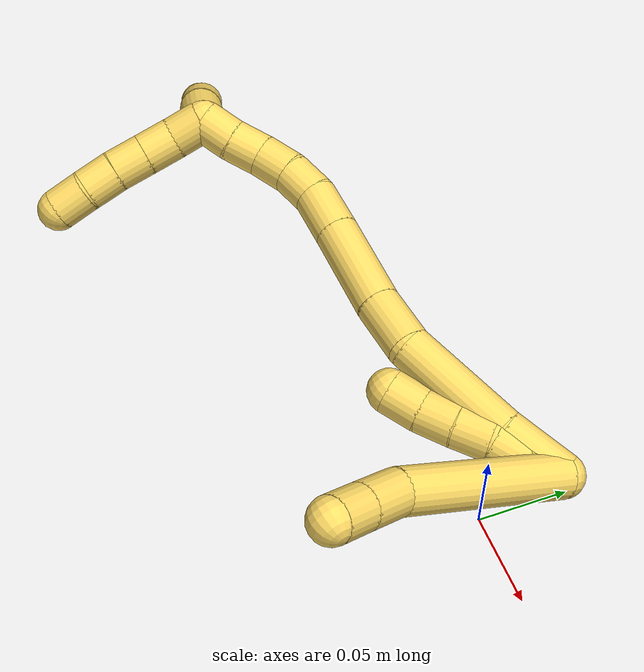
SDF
<sdf version="1.7">
 <world name="default">
  <model name="5">
   <static>0</static>
   <link name="5">
    <collision name="collision-cylinder-e_1_2_8">
     <pose>0.024452 -0.043706 0.009851 1.34911 0.499592 0.40252</pose>
     <geometry><cylinder><radius>0.0125</radius><length>0.102081</length></cylinder></geometry>
     <surface>
      <friction><ode><mu>1.16</mu><mu2>1.16</mu2><slip1>0</slip1><slip2>0</slip2></ode></friction>
      <contact><ode><kp>1e+06</kp><kd>1</kd><max_vel>0</max_vel><min_depth>0.001</min_depth></ode></contact>
     </surface>
    </collision>
    <visual name="visual-cylinder-e_1_2_8">
     <pose>0.024452 -0.043706 0.009851 1.34911 0.499592 0.40252</pose>
     <geometry><cylinder><radius>0.0125</radius><length>0.102081</length></cylinder></geometry>
     <material><ambient>1 0.858824 0.4 1</ambient></material>
    </visual>
    <collision name="collision-cylinder-e_2_8_9">
     <pose>0.056393 -0.098356 0.018195 1.70767 0.595743 0.67725</pose>
     <geometry><cylinder><radius>0.0125</radius><length>0.026693</length></cylinder></geometry>
     <surface>
      <friction><ode><mu>1.16</mu><mu2>1.16</mu2><slip1>0</slip1><slip2>0</slip2></ode></friction>
      <contact><ode><kp>1e+06</kp><kd>1</kd><max_vel>0</max_vel><min_depth>0.001</min_depth></ode></contact>
     </surface>
    </collision>
    <visual name="visual-cylinder-e_2_8_9">
     <pose>0.056393 -0.098356 0.018195 1.70767 0.595743 0.67725</pose>
     <geometry><cylinder><radius>0.0125</radius><length>0.026693</length></cylinder></geometry>
     <material><ambient>1 0.858824 0.4 1</ambient></material>
    </visual>
    <collision name="collision-cylinder-e_3_9_6">
     <pose>0.070011 -0.117854 0.015313 1.73009 0.615744 0.71429</pose>
     <geometry><cylinder><radius>0.0125</radius><length>0.021226</length></cylinder></geometry>
     <surface>
      <friction><ode><mu>1.16</mu><mu2>1.16</mu2><slip1>0</slip1><slip2>0</slip2></ode></friction>
      <contact><ode><kp>1e+06</kp><kd>1</kd><max_vel>0</max_vel><min_depth>0.001</min_depth></ode></contact>
     </surface>
    </collision>
    <visual name="visual-cylinder-e_3_9_6">
     <pose>0.070011 -0.117854 0.015313 1.73009 0.615744 0.71429</pose>
     <geometry><cylinder><radius>0.0125</radius><length>0.021226</length></cylinder></geometry>
     <material><ambient>1 0.858824 0.4 1</ambient></material>
    </visual>
    <collision name="collision-cylinder-e_1_2_10">
     <pose>0.001877 -0.005589 0.008077 0.605297 0.188827 0.059118</pose>
     <geometry><cylinder><radius>0.0125</radius><length>0.02</length></cylinder></geometry>
     <surface>
      <friction><ode><mu>1.16</mu><mu2>1.16</mu2><slip1>0</slip1><slip2>0</slip2></ode></friction>
      <contact><ode><kp>1e+06</kp><kd>1</kd><max_vel>0</max_vel><min_depth>0.001</min_depth></ode></contact>
     </surface>
    </collision>
    <visual name="visual-cylinder-e_1_2_10">
     <pose>0.001877 -0.005589 0.008077 0.605297 0.188827 0.059118</pose>
     <geometry><cylinder><radius>0.0125</radius><length>0.02</length></cylinder></geometry>
     <material><ambient>1 0.858824 0.4 1</ambient></material>
    </visual>
    <collision name="collision-cylinder-e_2_10_11">
     <pose>0.006223 -0.016216 0.024432 0.546683 0.249458 0.070274</pose>
     <geometry><cylinder><radius>0.0125</radius><length>0.02</length></cylinder></geometry>
     <surface>
      <friction><ode><mu>1.16</mu><mu2>1.16</mu2><slip1>0</slip1><slip2>0</slip2></ode></friction>
      <contact><ode><kp>1e+06</kp><kd>1</kd><max_vel>0</max_vel><min_depth>0.001</min_depth></ode></contact>
     </surface>
    </collision>
    <visual name="visual-cylinder-e_2_10_11">
     <pose>0.006223 -0.016216 0.024432 0.546683 0.249458 0.070274</pose>
     <geometry><cylinder><radius>0.0125</radius><length>0.02</length></cylinder></geometry>
     <material><ambient>1 0.858824 0.4 1</ambient></material>
    </visual>
    <collision name="collision-cylinder-e_3_11_12">
     <pose>0.009193 -0.027009 0.040873 0.614196 0.050167 0.015912</pose>
     <geometry><cylinder><radius>0.0125</radius><length>0.02</length></cylinder></geometry>
     <surface>
      <friction><ode><mu>1.16</mu><mu2>1.16</mu2><slip1>0</slip1><slip2>0</slip2></ode></friction>
      <contact><ode><kp>1e+06</kp><kd>1</kd><max_vel>0</max_vel><min_depth>0.001</min_depth></ode></contact>
     </surface>
    </collision>
    <visual name="visual-cylinder-e_3_11_12">
     <pose>0.009193 -0.027009 0.040873 0.614196 0.050167 0.015912</pose>
     <geometry><cylinder><radius>0.0125</radius><length>0.02</length></cylinder></geometry>
     <material><ambient>1 0.858824 0.4 1</ambient></material>
    </visual>
    <collision name="collision-cylinder-e_4_12_13">
     <pose>0.009788 -0.037994 0.057558 0.55036 0.009291 0.002623</pose>
     <geometry><cylinder><radius>0.0125</radius><length>0.02</length></cylinder></geometry>
     <surface>
      <friction><ode><mu>1.16</mu><mu2>1.16</mu2><slip1>0</slip1><slip2>0</slip2></ode></friction>
      <contact><ode><kp>1e+06</kp><kd>1</kd><max_vel>0</max_vel><min_depth>0.001</min_depth></ode></contact>
     </surface>
    </collision>
    <visual name="visual-cylinder-e_4_12_13">
     <pose>0.009788 -0.037994 0.057558 0.55036 0.009291 0.002623</pose>
     <geometry><cylinder><radius>0.0125</radius><length>0.02</length></cylinder></geometry>
     <material><ambient>1 0.858824 0.4 1</ambient></material>
    </visual>
    <collision name="collision-cylinder-e_5_13_5">
     <pose>0.011273 -0.047728 0.0749 0.472171 0.139745 0.03367</pose>
     <geometry><cylinder><radius>0.0125</radius><length>0.02</length></cylinder></geometry>
     <surface>
      <friction><ode><mu>1.16</mu><mu2>1.16</mu2><slip1>0</slip1><slip2>0</slip2></ode></friction>
      <contact><ode><kp>1e+06</kp><kd>1</kd><max_vel>0</max_vel><min_depth>0.001</min_depth></ode></contact>
     </surface>
    </collision>
    <visual name="visual-cylinder-e_5_13_5">
     <pose>0.011273 -0.047728 0.0749 0.472171 0.139745 0.03367</pose>
     <geometry><cylinder><radius>0.0125</radius><length>0.02</length></cylinder></geometry>
     <material><ambient>1 0.858824 0.4 1</ambient></material>
    </visual>
    <collision name="collision-cylinder-e_1_2_14">
     <pose>0.004208 -0.006817 0.016961 0.382149 0.226243 0.043944</pose>
     <geometry><cylinder><radius>0.0125</radius><length>0.037515</length></cylinder></geometry>
     <surface>
      <friction><ode><mu>1.16</mu><mu2>1.16</mu2><slip1>0</slip1><slip2>0</slip2></ode></friction>
      <contact><ode><kp>1e+06</kp><kd>1</kd><max_vel>0</max_vel><min_depth>0.001</min_depth></ode></contact>
     </surface>
    </collision>
    <visual name="visual-cylinder-e_1_2_14">
     <pose>0.004208 -0.006817 0.016961 0.382149 0.226243 0.043944</pose>
     <geometry><cylinder><radius>0.0125</radius><length>0.037515</length></cylinder></geometry>
     <material><ambient>1 0.858824 0.4 1</ambient></material>
    </visual>
    <collision name="collision-cylinder-e_2_14_15">
     <pose>0.012814 -0.022095 0.066315 0.255494 0.130643 0.016804</pose>
     <geometry><cylinder><radius>0.0125</radius><length>0.067536</length></cylinder></geometry>
     <surface>
      <friction><ode><mu>1.16</mu><mu2>1.16</mu2><slip1>0</slip1><slip2>0</slip2></ode></friction>
      <contact><ode><kp>1e+06</kp><kd>1</kd><max_vel>0</max_vel><min_depth>0.001</min_depth></ode></contact>
     </surface>
    </collision>
    <visual name="visual-cylinder-e_2_14_15">
     <pose>0.012814 -0.022095 0.066315 0.255494 0.130643 0.016804</pose>
     <geometry><cylinder><radius>0.0125</radius><length>0.067536</length></cylinder></geometry>
     <material><ambient>1 0.858824 0.4 1</ambient></material>
    </visual>
    <collision name="collision-cylinder-e_3_15_16">
     <pose>0.01652 -0.030278 0.114595 -0.017493 -0.043602 0.000381</pose>
     <geometry><cylinder><radius>0.0125</radius><length>0.031807</length></cylinder></geometry>
     <surface>
      <friction><ode><mu>1.16</mu><mu2>1.16</mu2><slip1>0</slip1><slip2>0</slip2></ode></friction>
      <contact><ode><kp>1e+06</kp><kd>1</kd><max_vel>0</max_vel><min_depth>0.001</min_depth></ode></contact>
     </surface>
    </collision>
    <visual name="visual-cylinder-e_3_15_16">
     <pose>0.01652 -0.030278 0.114595 -0.017493 -0.043602 0.000381</pose>
     <geometry><cylinder><radius>0.0125</radius><length>0.031807</length></cylinder></geometry>
     <material><ambient>1 0.858824 0.4 1</ambient></material>
    </visual>
    <collision name="collision-cylinder-e_4_16_17">
     <pose>0.015842 -0.027325 0.156669 -0.101806 0.000585 -3e-05</pose>
     <geometry><cylinder><radius>0.0125</radius><length>0.052648</length></cylinder></geometry>
     <surface>
      <friction><ode><mu>1.16</mu><mu2>1.16</mu2><slip1>0</slip1><slip2>0</slip2></ode></friction>
      <contact><ode><kp>1e+06</kp><kd>1</kd><max_vel>0</max_vel><min_depth>0.001</min_depth></ode></contact>
     </surface>
    </collision>
    <visual name="visual-cylinder-e_4_16_17">
     <pose>0.015842 -0.027325 0.156669 -0.101806 0.000585 -3e-05</pose>
     <geometry><cylinder><radius>0.0125</radius><length>0.052648</length></cylinder></geometry>
     <material><ambient>1 0.858824 0.4 1</ambient></material>
    </visual>
    <collision name="collision-cylinder-e_5_17_18">
     <pose>0.016143 -0.023472 0.196949 -0.083316 0.020154 -0.00084</pose>
     <geometry><cylinder><radius>0.0125</radius><length>0.028289</length></cylinder></geometry>
     <surface>
      <friction><ode><mu>1.16</mu><mu2>1.16</mu2><slip1>0</slip1><slip2>0</slip2></ode></friction>
      <contact><ode><kp>1e+06</kp><kd>1</kd><max_vel>0</max_vel><min_depth>0.001</min_depth></ode></contact>
     </surface>
    </collision>
    <visual name="visual-cylinder-e_5_17_18">
     <pose>0.016143 -0.023472 0.196949 -0.083316 0.020154 -0.00084</pose>
     <geometry><cylinder><radius>0.0125</radius><length>0.028289</length></cylinder></geometry>
     <material><ambient>1 0.858824 0.4 1</ambient></material>
    </visual>
    <collision name="collision-cylinder-e_6_18_19">
     <pose>0.017155 -0.024241 0.221129 0.190526 0.070668 0.006755</pose>
     <geometry><cylinder><radius>0.0125</radius><length>0.020598</length></cylinder></geometry>
     <surface>
      <friction><ode><mu>1.16</mu><mu2>1.16</mu2><slip1>0</slip1><slip2>0</slip2></ode></friction>
      <contact><ode><kp>1e+06</kp><kd>1</kd><max_vel>0</max_vel><min_depth>0.001</min_depth></ode></contact>
     </surface>
    </collision>
    <visual name="visual-cylinder-e_6_18_19">
     <pose>0.017155 -0.024241 0.221129 0.190526 0.070668 0.006755</pose>
     <geometry><cylinder><radius>0.0125</radius><length>0.020598</length></cylinder></geometry>
     <material><ambient>1 0.858824 0.4 1</ambient></material>
    </visual>
    <collision name="collision-cylinder-e_7_19_20">
     <pose>0.018166 -0.030117 0.241116 0.377981 0.026688 0.005105</pose>
     <geometry><cylinder><radius>0.0125</radius><length>0.021311</length></cylinder></geometry>
     <surface>
      <friction><ode><mu>1.16</mu><mu2>1.16</mu2><slip1>0</slip1><slip2>0</slip2></ode></friction>
      <contact><ode><kp>1e+06</kp><kd>1</kd><max_vel>0</max_vel><min_depth>0.001</min_depth></ode></contact>
     </surface>
    </collision>
    <visual name="visual-cylinder-e_7_19_20">
     <pose>0.018166 -0.030117 0.241116 0.377981 0.026688 0.005105</pose>
     <geometry><cylinder><radius>0.0125</radius><length>0.021311</length></cylinder></geometry>
     <material><ambient>1 0.858824 0.4 1</ambient></material>
    </visual>
    <collision name="collision-cylinder-e_8_20_21">
     <pose>0.021199 -0.039477 0.259082 0.592398 0.275487 0.084558</pose>
     <geometry><cylinder><radius>0.0125</radius><length>0.020208</length></cylinder></geometry>
     <surface>
      <friction><ode><mu>1.16</mu><mu2>1.16</mu2><slip1>0</slip1><slip2>0</slip2></ode></friction>
      <contact><ode><kp>1e+06</kp><kd>1</kd><max_vel>0</max_vel><min_depth>0.001</min_depth></ode></contact>
     </surface>
    </collision>
    <visual name="visual-cylinder-e_8_20_21">
     <pose>0.021199 -0.039477 0.259082 0.592398 0.275487 0.084558</pose>
     <geometry><cylinder><radius>0.0125</radius><length>0.020208</length></cylinder></geometry>
     <material><ambient>1 0.858824 0.4 1</ambient></material>
    </visual>
    <collision name="collision-cylinder-e_9_21_1">
     <pose>0.027311 -0.049359 0.275499 0.489843 0.341489 0.086137</pose>
     <geometry><cylinder><radius>0.0125</radius><length>0.020088</length></cylinder></geometry>
     <surface>
      <friction><ode><mu>1.16</mu><mu2>1.16</mu2><slip1>0</slip1><slip2>0</slip2></ode></friction>
      <contact><ode><kp>1e+06</kp><kd>1</kd><max_vel>0</max_vel><min_depth>0.001</min_depth></ode></contact>
     </surface>
    </collision>
    <visual name="visual-cylinder-e_9_21_1">
     <pose>0.027311 -0.049359 0.275499 0.489843 0.341489 0.086137</pose>
     <geometry><cylinder><radius>0.0125</radius><length>0.020088</length></cylinder></geometry>
     <material><ambient>1 0.858824 0.4 1</ambient></material>
    </visual>
    <collision name="collision-cylinder-e_1_1_22">
     <pose>0.024136 -0.050617 0.293163 -0.33041 -0.586236 0.100554</pose>
     <geometry><cylinder><radius>0.0125</radius><length>0.023637</length></cylinder></geometry>
     <surface>
      <friction><ode><mu>1.16</mu><mu2>1.16</mu2><slip1>0</slip1><slip2>0</slip2></ode></friction>
      <contact><ode><kp>1e+06</kp><kd>1</kd><max_vel>0</max_vel><min_depth>0.001</min_depth></ode></contact>
     </surface>
    </collision>
    <visual name="visual-cylinder-e_1_1_22">
     <pose>0.024136 -0.050617 0.293163 -0.33041 -0.586236 0.100554</pose>
     <geometry><cylinder><radius>0.0125</radius><length>0.023637</length></cylinder></geometry>
     <material><ambient>1 0.858824 0.4 1</ambient></material>
    </visual>
    <collision name="collision-cylinder-e_2_22_23">
     <pose>0.004256 -0.042618 0.314454 -0.381473 -0.801985 0.163356</pose>
     <geometry><cylinder><radius>0.0125</radius><length>0.037126</length></cylinder></geometry>
     <surface>
      <friction><ode><mu>1.16</mu><mu2>1.16</mu2><slip1>0</slip1><slip2>0</slip2></ode></friction>
      <contact><ode><kp>1e+06</kp><kd>1</kd><max_vel>0</max_vel><min_depth>0.001</min_depth></ode></contact>
     </surface>
    </collision>
    <visual name="visual-cylinder-e_2_22_23">
     <pose>0.004256 -0.042618 0.314454 -0.381473 -0.801985 0.163356</pose>
     <geometry><cylinder><radius>0.0125</radius><length>0.037126</length></cylinder></geometry>
     <material><ambient>1 0.858824 0.4 1</ambient></material>
    </visual>
    <collision name="collision-cylinder-e_3_23_4">
     <pose>-0.02407 -0.034007 0.338511 -0.305272 -0.869147 0.142566</pose>
     <geometry><cylinder><radius>0.0125</radius><length>0.039237</length></cylinder></geometry>
     <surface>
      <friction><ode><mu>1.16</mu><mu2>1.16</mu2><slip1>0</slip1><slip2>0</slip2></ode></friction>
      <contact><ode><kp>1e+06</kp><kd>1</kd><max_vel>0</max_vel><min_depth>0.001</min_depth></ode></contact>
     </surface>
    </collision>
    <visual name="visual-cylinder-e_3_23_4">
     <pose>-0.02407 -0.034007 0.338511 -0.305272 -0.869147 0.142566</pose>
     <geometry><cylinder><radius>0.0125</radius><length>0.039237</length></cylinder></geometry>
     <material><ambient>1 0.858824 0.4 1</ambient></material>
    </visual>
    <collision name="collision-cylinder-e_1_1_24">
     <pose>0.02746 -0.063144 0.285452 1.4008 -0.327315 -0.276629</pose>
     <geometry><cylinder><radius>0.0125</radius><length>0.02</length></cylinder></geometry>
     <surface>
      <friction><ode><mu>1.16</mu><mu2>1.16</mu2><slip1>0</slip1><slip2>0</slip2></ode></friction>
      <contact><ode><kp>1e+06</kp><kd>1</kd><max_vel>0</max_vel><min_depth>0.001</min_depth></ode></contact>
     </surface>
    </collision>
    <visual name="visual-cylinder-e_1_1_24">
     <pose>0.02746 -0.063144 0.285452 1.4008 -0.327315 -0.276629</pose>
     <geometry><cylinder><radius>0.0125</radius><length>0.02</length></cylinder></geometry>
     <material><ambient>1 0.858824 0.4 1</ambient></material>
    </visual>
    <collision name="collision-cylinder-e_2_24_25">
     <pose>0.022925 -0.082378 0.287533 1.5225 -0.132316 -0.126092</pose>
     <geometry><cylinder><radius>0.0125</radius><length>0.02</length></cylinder></geometry>
     <surface>
      <friction><ode><mu>1.16</mu><mu2>1.16</mu2><slip1>0</slip1><slip2>0</slip2></ode></friction>
      <contact><ode><kp>1e+06</kp><kd>1</kd><max_vel>0</max_vel><min_depth>0.001</min_depth></ode></contact>
     </surface>
    </collision>
    <visual name="visual-cylinder-e_2_24_25">
     <pose>0.022925 -0.082378 0.287533 1.5225 -0.132316 -0.126092</pose>
     <geometry><cylinder><radius>0.0125</radius><length>0.02</length></cylinder></geometry>
     <material><ambient>1 0.858824 0.4 1</ambient></material>
    </visual>
    <collision name="collision-cylinder-e_3_25_26">
     <pose>0.020267 -0.102175 0.288521 1.51938 -0.134291 -0.127577</pose>
     <geometry><cylinder><radius>0.0125</radius><length>0.02</length></cylinder></geometry>
     <surface>
      <friction><ode><mu>1.16</mu><mu2>1.16</mu2><slip1>0</slip1><slip2>0</slip2></ode></friction>
      <contact><ode><kp>1e+06</kp><kd>1</kd><max_vel>0</max_vel><min_depth>0.001</min_depth></ode></contact>
     </surface>
    </collision>
    <visual name="visual-cylinder-e_3_25_26">
     <pose>0.020267 -0.102175 0.288521 1.51938 -0.134291 -0.127577</pose>
     <geometry><cylinder><radius>0.0125</radius><length>0.02</length></cylinder></geometry>
     <material><ambient>1 0.858824 0.4 1</ambient></material>
    </visual>
    <collision name="collision-cylinder-e_4_26_27">
     <pose>0.017155 -0.121913 0.288939 1.58002 -0.178272 -0.179915</pose>
     <geometry><cylinder><radius>0.0125</radius><length>0.02</length></cylinder></geometry>
     <surface>
      <friction><ode><mu>1.16</mu><mu2>1.16</mu2><slip1>0</slip1><slip2>0</slip2></ode></friction>
      <contact><ode><kp>1e+06</kp><kd>1</kd><max_vel>0</max_vel><min_depth>0.001</min_depth></ode></contact>
     </surface>
    </collision>
    <visual name="visual-cylinder-e_4_26_27">
     <pose>0.017155 -0.121913 0.288939 1.58002 -0.178272 -0.179915</pose>
     <geometry><cylinder><radius>0.0125</radius><length>0.02</length></cylinder></geometry>
     <material><ambient>1 0.858824 0.4 1</ambient></material>
    </visual>
    <collision name="collision-cylinder-e_5_27_3">
     <pose>0.012311 -0.14125 0.289478 1.50457 -0.312139 -0.292417</pose>
     <geometry><cylinder><radius>0.0125</radius><length>0.02</length></cylinder></geometry>
     <surface>
      <friction><ode><mu>1.16</mu><mu2>1.16</mu2><slip1>0</slip1><slip2>0</slip2></ode></friction>
      <contact><ode><kp>1e+06</kp><kd>1</kd><max_vel>0</max_vel><min_depth>0.001</min_depth></ode></contact>
     </surface>
    </collision>
    <visual name="visual-cylinder-e_5_27_3">
     <pose>0.012311 -0.14125 0.289478 1.50457 -0.312139 -0.292417</pose>
     <geometry><cylinder><radius>0.0125</radius><length>0.02</length></cylinder></geometry>
     <material><ambient>1 0.858824 0.4 1</ambient></material>
    </visual>
    <collision name="collision-sphere-3">
     <pose>0.00924 -0.150746 0.290108 0 -0 0</pose>
     <geometry><sphere><radius>0.0125</radius></sphere></geometry>
     <surface>
      <friction><ode><mu>1.16</mu><mu2>1.16</mu2><slip1>0</slip1><slip2>0</slip2></ode></friction>
      <contact><ode><kp>1e+06</kp><kd>1</kd><max_vel>0</max_vel><min_depth>0.001</min_depth></ode></contact>
     </surface>
    </collision>
    <visual name="visual-sphere-3">
     <pose>0.00924 -0.150746 0.290108 0 -0 0</pose>
     <geometry><sphere><radius>0.0125</radius></sphere></geometry>
     <material><ambient>1 0.858824 0.4 1</ambient></material>
    </visual>
    <collision name="collision-sphere-27">
     <pose>0.015382 -0.131755 0.288849 0 -0 0</pose>
     <geometry><sphere><radius>0.0125</radius></sphere></geometry>
     <surface>
      <friction><ode><mu>1.16</mu><mu2>1.16</mu2><slip1>0</slip1><slip2>0</slip2></ode></friction>
      <contact><ode><kp>1e+06</kp><kd>1</kd><max_vel>0</max_vel><min_depth>0.001</min_depth></ode></contact>
     </surface>
    </collision>
    <visual name="visual-sphere-27">
     <pose>0.015382 -0.131755 0.288849 0 -0 0</pose>
     <geometry><sphere><radius>0.0125</radius></sphere></geometry>
     <material><ambient>1 0.858824 0.4 1</ambient></material>
    </visual>
    <collision name="collision-sphere-26">
     <pose>0.018928 -0.112072 0.28903 0 -0 0</pose>
     <geometry><sphere><radius>0.0125</radius></sphere></geometry>
     <surface>
      <friction><ode><mu>1.16</mu><mu2>1.16</mu2><slip1>0</slip1><slip2>0</slip2></ode></friction>
      <contact><ode><kp>1e+06</kp><kd>1</kd><max_vel>0</max_vel><min_depth>0.001</min_depth></ode></contact>
     </surface>
    </collision>
    <visual name="visual-sphere-26">
     <pose>0.018928 -0.112072 0.28903 0 -0 0</pose>
     <geometry><sphere><radius>0.0125</radius></sphere></geometry>
     <material><ambient>1 0.858824 0.4 1</ambient></material>
    </visual>
    <collision name="collision-sphere-25">
     <pose>0.021606 -0.092279 0.288012 0 -0 0</pose>
     <geometry><sphere><radius>0.0125</radius></sphere></geometry>
     <surface>
      <friction><ode><mu>1.16</mu><mu2>1.16</mu2><slip1>0</slip1><slip2>0</slip2></ode></friction>
      <contact><ode><kp>1e+06</kp><kd>1</kd><max_vel>0</max_vel><min_depth>0.001</min_depth></ode></contact>
     </surface>
    </collision>
    <visual name="visual-sphere-25">
     <pose>0.021606 -0.092279 0.288012 0 -0 0</pose>
     <geometry><sphere><radius>0.0125</radius></sphere></geometry>
     <material><ambient>1 0.858824 0.4 1</ambient></material>
    </visual>
    <collision name="collision-sphere-24">
     <pose>0.024245 -0.072477 0.287054 0 -0 0</pose>
     <geometry><sphere><radius>0.0125</radius></sphere></geometry>
     <surface>
      <friction><ode><mu>1.16</mu><mu2>1.16</mu2><slip1>0</slip1><slip2>0</slip2></ode></friction>
      <contact><ode><kp>1e+06</kp><kd>1</kd><max_vel>0</max_vel><min_depth>0.001</min_depth></ode></contact>
     </surface>
    </collision>
    <visual name="visual-sphere-24">
     <pose>0.024245 -0.072477 0.287054 0 -0 0</pose>
     <geometry><sphere><radius>0.0125</radius></sphere></geometry>
     <material><ambient>1 0.858824 0.4 1</ambient></material>
    </visual>
    <collision name="collision-sphere-4">
     <pose>-0.039054 -0.030201 0.350589 0 -0 0</pose>
     <geometry><sphere><radius>0.0125</radius></sphere></geometry>
     <surface>
      <friction><ode><mu>1.16</mu><mu2>1.16</mu2><slip1>0</slip1><slip2>0</slip2></ode></friction>
      <contact><ode><kp>1e+06</kp><kd>1</kd><max_vel>0</max_vel><min_depth>0.001</min_depth></ode></contact>
     </surface>
    </collision>
    <visual name="visual-sphere-4">
     <pose>-0.039054 -0.030201 0.350589 0 -0 0</pose>
     <geometry><sphere><radius>0.0125</radius></sphere></geometry>
     <material><ambient>1 0.858824 0.4 1</ambient></material>
    </visual>
    <collision name="collision-sphere-23">
     <pose>-0.009086 -0.037813 0.326433 0 -0 0</pose>
     <geometry><sphere><radius>0.0125</radius></sphere></geometry>
     <surface>
      <friction><ode><mu>1.16</mu><mu2>1.16</mu2><slip1>0</slip1><slip2>0</slip2></ode></friction>
      <contact><ode><kp>1e+06</kp><kd>1</kd><max_vel>0</max_vel><min_depth>0.001</min_depth></ode></contact>
     </surface>
    </collision>
    <visual name="visual-sphere-23">
     <pose>-0.009086 -0.037813 0.326433 0 -0 0</pose>
     <geometry><sphere><radius>0.0125</radius></sphere></geometry>
     <material><ambient>1 0.858824 0.4 1</ambient></material>
    </visual>
    <collision name="collision-sphere-22">
     <pose>0.017598 -0.047423 0.302476 0 -0 0</pose>
     <geometry><sphere><radius>0.0125</radius></sphere></geometry>
     <surface>
      <friction><ode><mu>1.16</mu><mu2>1.16</mu2><slip1>0</slip1><slip2>0</slip2></ode></friction>
      <contact><ode><kp>1e+06</kp><kd>1</kd><max_vel>0</max_vel><min_depth>0.001</min_depth></ode></contact>
     </surface>
    </collision>
    <visual name="visual-sphere-22">
     <pose>0.017598 -0.047423 0.302476 0 -0 0</pose>
     <geometry><sphere><radius>0.0125</radius></sphere></geometry>
     <material><ambient>1 0.858824 0.4 1</ambient></material>
    </visual>
    <collision name="collision-sphere-1">
     <pose>0.030675 -0.053811 0.28385 0 -0 0</pose>
     <geometry><sphere><radius>0.0125</radius></sphere></geometry>
     <surface>
      <friction><ode><mu>1.16</mu><mu2>1.16</mu2><slip1>0</slip1><slip2>0</slip2></ode></friction>
      <contact><ode><kp>1e+06</kp><kd>1</kd><max_vel>0</max_vel><min_depth>0.001</min_depth></ode></contact>
     </surface>
    </collision>
    <visual name="visual-sphere-1">
     <pose>0.030675 -0.053811 0.28385 0 -0 0</pose>
     <geometry><sphere><radius>0.0125</radius></sphere></geometry>
     <material><ambient>1 0.858824 0.4 1</ambient></material>
    </visual>
    <collision name="collision-sphere-21">
     <pose>0.023948 -0.044906 0.267148 0 -0 0</pose>
     <geometry><sphere><radius>0.0125</radius></sphere></geometry>
     <surface>
      <friction><ode><mu>1.16</mu><mu2>1.16</mu2><slip1>0</slip1><slip2>0</slip2></ode></friction>
      <contact><ode><kp>1e+06</kp><kd>1</kd><max_vel>0</max_vel><min_depth>0.001</min_depth></ode></contact>
     </surface>
    </collision>
    <visual name="visual-sphere-21">
     <pose>0.023948 -0.044906 0.267148 0 -0 0</pose>
     <geometry><sphere><radius>0.0125</radius></sphere></geometry>
     <material><ambient>1 0.858824 0.4 1</ambient></material>
    </visual>
    <collision name="collision-sphere-11">
     <pose>0.008692 -0.021253 0.032711 0 -0 0</pose>
     <geometry><sphere><radius>0.0125</radius></sphere></geometry>
     <surface>
      <friction><ode><mu>1.16</mu><mu2>1.16</mu2><slip1>0</slip1><slip2>0</slip2></ode></friction>
      <contact><ode><kp>1e+06</kp><kd>1</kd><max_vel>0</max_vel><min_depth>0.001</min_depth></ode></contact>
     </surface>
    </collision>
    <visual name="visual-sphere-11">
     <pose>0.008692 -0.021253 0.032711 0 -0 0</pose>
     <geometry><sphere><radius>0.0125</radius></sphere></geometry>
     <material><ambient>1 0.858824 0.4 1</ambient></material>
    </visual>
    <collision name="collision-sphere-10">
     <pose>0.003754 -0.011178 0.016154 0 -0 0</pose>
     <geometry><sphere><radius>0.0125</radius></sphere></geometry>
     <surface>
      <friction><ode><mu>1.16</mu><mu2>1.16</mu2><slip1>0</slip1><slip2>0</slip2></ode></friction>
      <contact><ode><kp>1e+06</kp><kd>1</kd><max_vel>0</max_vel><min_depth>0.001</min_depth></ode></contact>
     </surface>
    </collision>
    <visual name="visual-sphere-10">
     <pose>0.003754 -0.011178 0.016154 0 -0 0</pose>
     <geometry><sphere><radius>0.0125</radius></sphere></geometry>
     <material><ambient>1 0.858824 0.4 1</ambient></material>
    </visual>
    <collision name="collision-sphere-6">
     <pose>0.076141 -0.126408 0.013939 0 -0 0</pose>
     <geometry><sphere><radius>0.0125</radius></sphere></geometry>
     <surface>
      <friction><ode><mu>1.16</mu><mu2>1.16</mu2><slip1>0</slip1><slip2>0</slip2></ode></friction>
      <contact><ode><kp>1e+06</kp><kd>1</kd><max_vel>0</max_vel><min_depth>0.001</min_depth></ode></contact>
     </surface>
    </collision>
    <visual name="visual-sphere-6">
     <pose>0.076141 -0.126408 0.013939 0 -0 0</pose>
     <geometry><sphere><radius>0.0125</radius></sphere></geometry>
     <material><ambient>1 0.858824 0.4 1</ambient></material>
    </visual>
    <collision name="collision-sphere-9">
     <pose>0.063882 -0.1093 0.016687 0 -0 0</pose>
     <geometry><sphere><radius>0.0125</radius></sphere></geometry>
     <surface>
      <friction><ode><mu>1.16</mu><mu2>1.16</mu2><slip1>0</slip1><slip2>0</slip2></ode></friction>
      <contact><ode><kp>1e+06</kp><kd>1</kd><max_vel>0</max_vel><min_depth>0.001</min_depth></ode></contact>
     </surface>
    </collision>
    <visual name="visual-sphere-9">
     <pose>0.063882 -0.1093 0.016687 0 -0 0</pose>
     <geometry><sphere><radius>0.0125</radius></sphere></geometry>
     <material><ambient>1 0.858824 0.4 1</ambient></material>
    </visual>
    <collision name="collision-sphere-2">
     <geometry><sphere><radius>0.0125</radius></sphere></geometry>
     <surface>
      <friction><ode><mu>1.16</mu><mu2>1.16</mu2><slip1>0</slip1><slip2>0</slip2></ode></friction>
      <contact><ode><kp>1e+06</kp><kd>1</kd><max_vel>0</max_vel><min_depth>0.001</min_depth></ode></contact>
     </surface>
    </collision>
    <visual name="visual-sphere-2">
     <geometry><sphere><radius>0.0125</radius></sphere></geometry>
     <material><ambient>1 0.858824 0.4 1</ambient></material>
    </visual>
    <collision name="collision-sphere-19">
     <pose>0.017882 -0.026186 0.231216 0 -0 0</pose>
     <geometry><sphere><radius>0.0125</radius></sphere></geometry>
     <surface>
      <friction><ode><mu>1.16</mu><mu2>1.16</mu2><slip1>0</slip1><slip2>0</slip2></ode></friction>
      <contact><ode><kp>1e+06</kp><kd>1</kd><max_vel>0</max_vel><min_depth>0.001</min_depth></ode></contact>
     </surface>
    </collision>
    <visual name="visual-sphere-19">
     <pose>0.017882 -0.026186 0.231216 0 -0 0</pose>
     <geometry><sphere><radius>0.0125</radius></sphere></geometry>
     <material><ambient>1 0.858824 0.4 1</ambient></material>
    </visual>
    <collision name="collision-sphere-8">
     <pose>0.048904 -0.087412 0.019702 0 -0 0</pose>
     <geometry><sphere><radius>0.0125</radius></sphere></geometry>
     <surface>
      <friction><ode><mu>1.16</mu><mu2>1.16</mu2><slip1>0</slip1><slip2>0</slip2></ode></friction>
      <contact><ode><kp>1e+06</kp><kd>1</kd><max_vel>0</max_vel><min_depth>0.001</min_depth></ode></contact>
     </surface>
    </collision>
    <visual name="visual-sphere-8">
     <pose>0.048904 -0.087412 0.019702 0 -0 0</pose>
     <geometry><sphere><radius>0.0125</radius></sphere></geometry>
     <material><ambient>1 0.858824 0.4 1</ambient></material>
    </visual>
    <collision name="collision-sphere-12">
     <pose>0.009695 -0.032765 0.049035 0 -0 0</pose>
     <geometry><sphere><radius>0.0125</radius></sphere></geometry>
     <surface>
      <friction><ode><mu>1.16</mu><mu2>1.16</mu2><slip1>0</slip1><slip2>0</slip2></ode></friction>
      <contact><ode><kp>1e+06</kp><kd>1</kd><max_vel>0</max_vel><min_depth>0.001</min_depth></ode></contact>
     </surface>
    </collision>
    <visual name="visual-sphere-12">
     <pose>0.009695 -0.032765 0.049035 0 -0 0</pose>
     <geometry><sphere><radius>0.0125</radius></sphere></geometry>
     <material><ambient>1 0.858824 0.4 1</ambient></material>
    </visual>
    <collision name="collision-sphere-13">
     <pose>0.00988 -0.043224 0.066081 0 -0 0</pose>
     <geometry><sphere><radius>0.0125</radius></sphere></geometry>
     <surface>
      <friction><ode><mu>1.16</mu><mu2>1.16</mu2><slip1>0</slip1><slip2>0</slip2></ode></friction>
      <contact><ode><kp>1e+06</kp><kd>1</kd><max_vel>0</max_vel><min_depth>0.001</min_depth></ode></contact>
     </surface>
    </collision>
    <visual name="visual-sphere-13">
     <pose>0.00988 -0.043224 0.066081 0 -0 0</pose>
     <geometry><sphere><radius>0.0125</radius></sphere></geometry>
     <material><ambient>1 0.858824 0.4 1</ambient></material>
    </visual>
    <collision name="collision-sphere-5">
     <pose>0.012666 -0.052232 0.083719 0 -0 0</pose>
     <geometry><sphere><radius>0.0125</radius></sphere></geometry>
     <surface>
      <friction><ode><mu>1.16</mu><mu2>1.16</mu2><slip1>0</slip1><slip2>0</slip2></ode></friction>
      <contact><ode><kp>1e+06</kp><kd>1</kd><max_vel>0</max_vel><min_depth>0.001</min_depth></ode></contact>
     </surface>
    </collision>
    <visual name="visual-sphere-5">
     <pose>0.012666 -0.052232 0.083719 0 -0 0</pose>
     <geometry><sphere><radius>0.0125</radius></sphere></geometry>
     <material><ambient>1 0.858824 0.4 1</ambient></material>
    </visual>
    <collision name="collision-sphere-14">
     <pose>0.008415 -0.013633 0.033921 0 -0 0</pose>
     <geometry><sphere><radius>0.0125</radius></sphere></geometry>
     <surface>
      <friction><ode><mu>1.16</mu><mu2>1.16</mu2><slip1>0</slip1><slip2>0</slip2></ode></friction>
      <contact><ode><kp>1e+06</kp><kd>1</kd><max_vel>0</max_vel><min_depth>0.001</min_depth></ode></contact>
     </surface>
    </collision>
    <visual name="visual-sphere-14">
     <pose>0.008415 -0.013633 0.033921 0 -0 0</pose>
     <geometry><sphere><radius>0.0125</radius></sphere></geometry>
     <material><ambient>1 0.858824 0.4 1</ambient></material>
    </visual>
    <collision name="collision-sphere-15">
     <pose>0.017213 -0.030556 0.098709 0 -0 0</pose>
     <geometry><sphere><radius>0.0125</radius></sphere></geometry>
     <surface>
      <friction><ode><mu>1.16</mu><mu2>1.16</mu2><slip1>0</slip1><slip2>0</slip2></ode></friction>
      <contact><ode><kp>1e+06</kp><kd>1</kd><max_vel>0</max_vel><min_depth>0.001</min_depth></ode></contact>
     </surface>
    </collision>
    <visual name="visual-sphere-15">
     <pose>0.017213 -0.030556 0.098709 0 -0 0</pose>
     <geometry><sphere><radius>0.0125</radius></sphere></geometry>
     <material><ambient>1 0.858824 0.4 1</ambient></material>
    </visual>
    <collision name="collision-sphere-16">
     <pose>0.015827 -0.03 0.130481 0 -0 0</pose>
     <geometry><sphere><radius>0.0125</radius></sphere></geometry>
     <surface>
      <friction><ode><mu>1.16</mu><mu2>1.16</mu2><slip1>0</slip1><slip2>0</slip2></ode></friction>
      <contact><ode><kp>1e+06</kp><kd>1</kd><max_vel>0</max_vel><min_depth>0.001</min_depth></ode></contact>
     </surface>
    </collision>
    <visual name="visual-sphere-16">
     <pose>0.015827 -0.03 0.130481 0 -0 0</pose>
     <geometry><sphere><radius>0.0125</radius></sphere></geometry>
     <material><ambient>1 0.858824 0.4 1</ambient></material>
    </visual>
    <collision name="collision-sphere-17">
     <pose>0.015858 -0.024649 0.182856 0 -0 0</pose>
     <geometry><sphere><radius>0.0125</radius></sphere></geometry>
     <surface>
      <friction><ode><mu>1.16</mu><mu2>1.16</mu2><slip1>0</slip1><slip2>0</slip2></ode></friction>
      <contact><ode><kp>1e+06</kp><kd>1</kd><max_vel>0</max_vel><min_depth>0.001</min_depth></ode></contact>
     </surface>
    </collision>
    <visual name="visual-sphere-17">
     <pose>0.015858 -0.024649 0.182856 0 -0 0</pose>
     <geometry><sphere><radius>0.0125</radius></sphere></geometry>
     <material><ambient>1 0.858824 0.4 1</ambient></material>
    </visual>
    <collision name="collision-sphere-18">
     <pose>0.016428 -0.022296 0.211042 0 -0 0</pose>
     <geometry><sphere><radius>0.0125</radius></sphere></geometry>
     <surface>
      <friction><ode><mu>1.16</mu><mu2>1.16</mu2><slip1>0</slip1><slip2>0</slip2></ode></friction>
      <contact><ode><kp>1e+06</kp><kd>1</kd><max_vel>0</max_vel><min_depth>0.001</min_depth></ode></contact>
     </surface>
    </collision>
    <visual name="visual-sphere-18">
     <pose>0.016428 -0.022296 0.211042 0 -0 0</pose>
     <geometry><sphere><radius>0.0125</radius></sphere></geometry>
     <material><ambient>1 0.858824 0.4 1</ambient></material>
    </visual>
    <collision name="collision-sphere-20">
     <pose>0.018451 -0.034048 0.251016 0 -0 0</pose>
     <geometry><sphere><radius>0.0125</radius></sphere></geometry>
     <surface>
      <friction><ode><mu>1.16</mu><mu2>1.16</mu2><slip1>0</slip1><slip2>0</slip2></ode></friction>
      <contact><ode><kp>1e+06</kp><kd>1</kd><max_vel>0</max_vel><min_depth>0.001</min_depth></ode></contact>
     </surface>
    </collision>
    <visual name="visual-sphere-20">
     <pose>0.018451 -0.034048 0.251016 0 -0 0</pose>
     <geometry><sphere><radius>0.0125</radius></sphere></geometry>
     <material><ambient>1 0.858824 0.4 1</ambient></material>
    </visual>
    <inertial>
     <pose>0.016797 -0.045805 0.146214 0 -0 0</pose>
     <mass>0.75</mass>
     <inertia><ixx>0.0002</ixx><ixy>0</ixy><ixz>0</ixz><iyy>0.000128</iyy><iyz>0</iyz><izz>9.4e-05</izz></inertia>
    </inertial>
   </link>
   <pose>-0.002839 0.047403 0.012501 0.915769 -1.37 -0.747939</pose>
  </model>
 </world>
</sdf>
